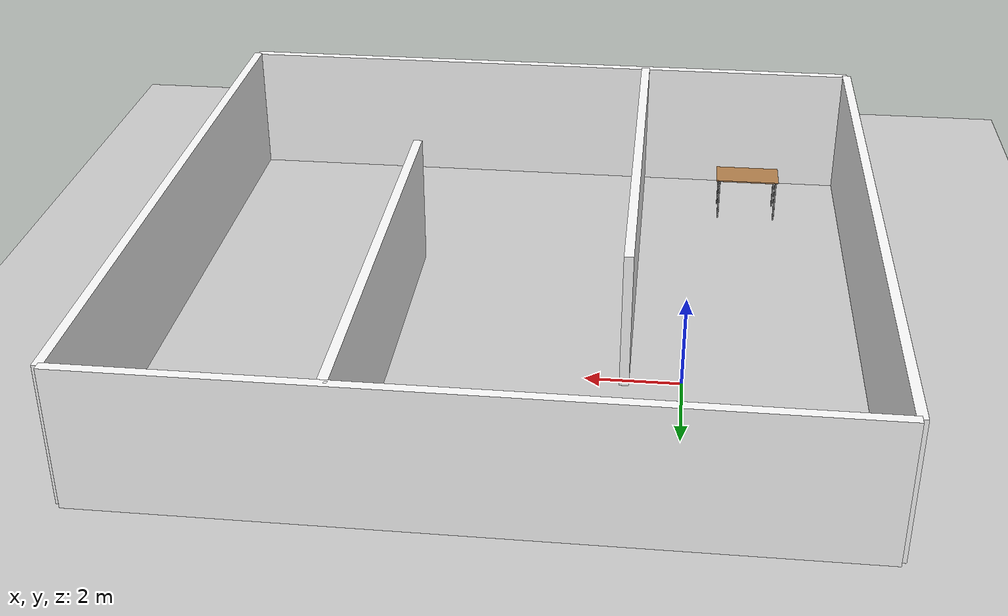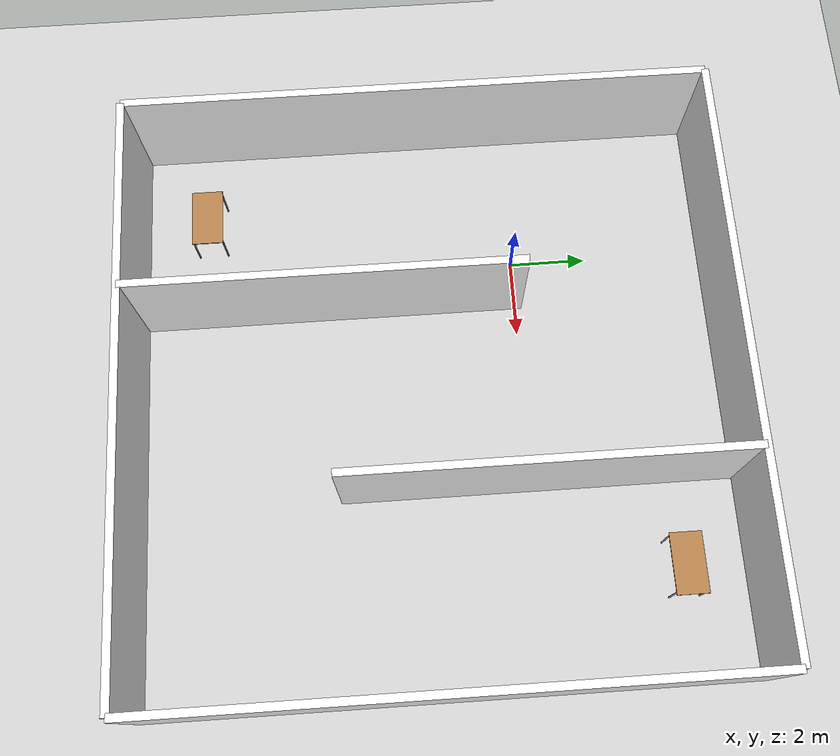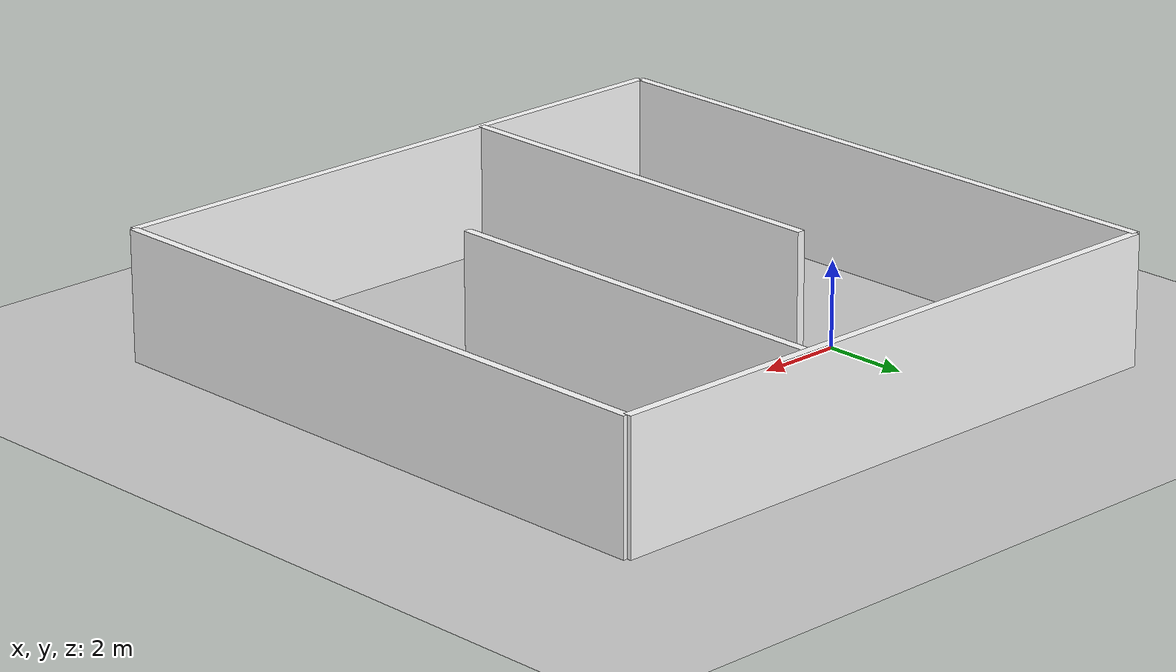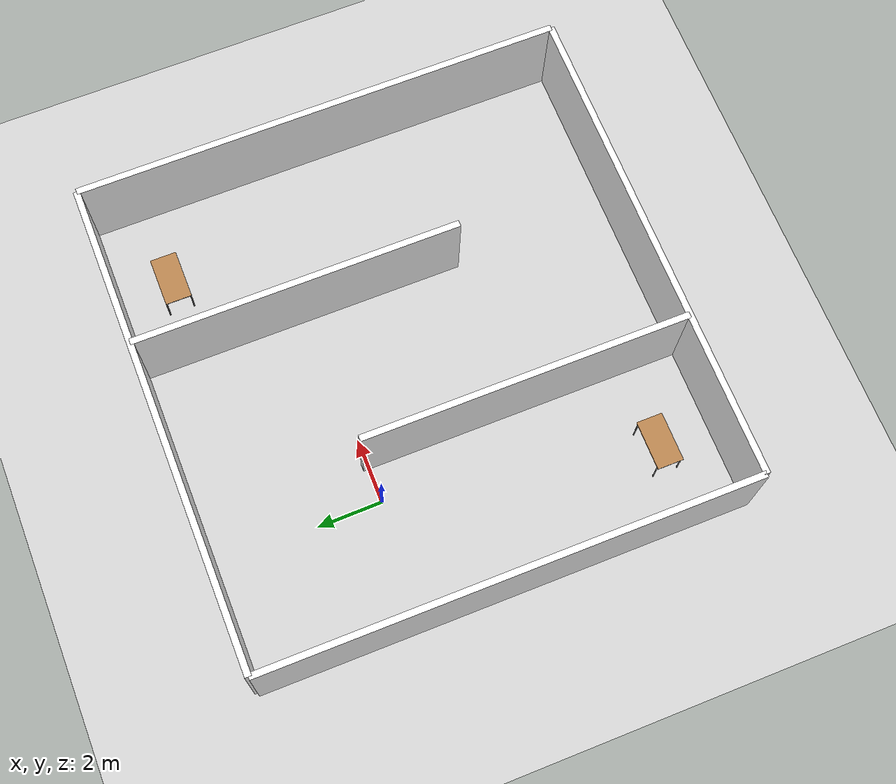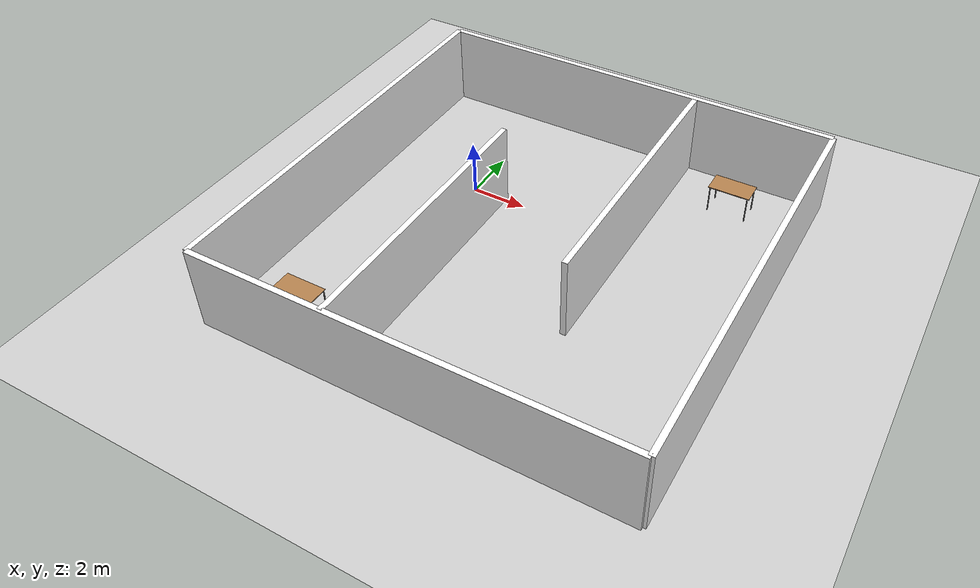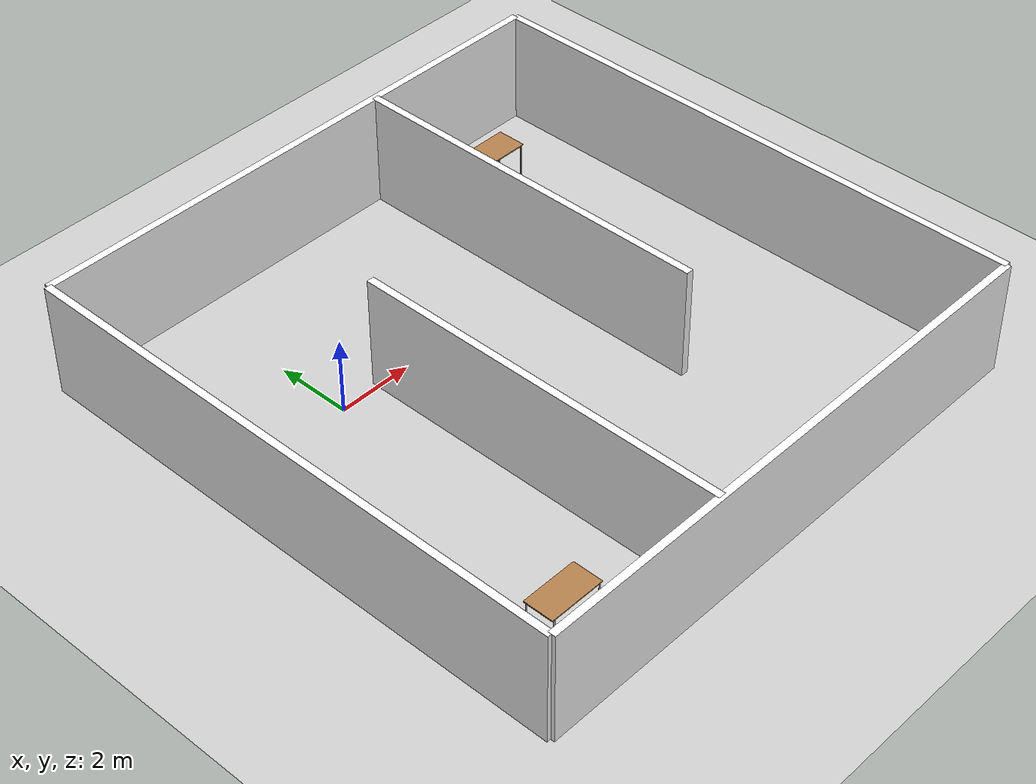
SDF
<sdf version="1.7">
 <world name="default">
  <light name="sun" type="directional">
   <pose>0 0 10 0 -0 0</pose>
   <diffuse>0.8 0.8 0.8 1</diffuse>
   <specular>0.2 0.2 0.2 1</specular>
   <attenuation>
    <range>1000</range>
    <constant>0.9</constant>
    <linear>0.01</linear>
    <quadratic>0.001</quadratic>
   </attenuation>
   <direction>-0.5 0.1 -0.9</direction>
   <spot><inner_angle>0</inner_angle><outer_angle>0</outer_angle><falloff>0</falloff></spot>
  </light>
  <model name="ground_plane">
   <static>1</static>
   <link name="link">
    <collision name="collision">
     <geometry><plane><normal>0 0 1</normal><size>100 100</size></plane></geometry>
     <surface><friction><ode><mu>100</mu><mu2>50</mu2></ode></friction></surface>
    </collision>
    <visual name="visual">
     <cast_shadows>0</cast_shadows>
     <geometry><plane><normal>0 0 1</normal><size>100 100</size></plane></geometry>
     <material>
      <script><uri>file://media/materials/scripts/gazebo.material</uri><name>Gazebo/Grey</name></script>
     </material>
    </visual>
   </link>
  </model>
  <gravity>0 0 -9.8</gravity>
  <magnetic_field>6e-06 2.3e-05 -4.2e-05</magnetic_field>
  <atmosphere type="adiabatic"/>
  <physics type="ode">
   <max_step_size>0.001</max_step_size>
   <real_time_factor>1</real_time_factor>
   <real_time_update_rate>1000</real_time_update_rate>
  </physics>
  <scene><ambient>0.4 0.4 0.4 1</ambient><background>0.7 0.7 0.7 1</background><shadows>1</shadows></scene>
  <audio><device>default</device></audio>
  <spherical_coordinates>
   <surface_model>EARTH_WGS84</surface_model>
   <latitude_deg>0</latitude_deg>
   <longitude_deg>0</longitude_deg>
   <elevation>0</elevation>
   <heading_deg>0</heading_deg>
  </spherical_coordinates>
  <model name="warehouse_walls">
   <link name="walls_link">
    <inertial>
     <mass>1</mass>
     <inertia><ixx>1</ixx><ixy>0</ixy><ixz>0</ixz><iyy>1</iyy><iyz>0</iyz><izz>1</izz></inertia>
    </inertial>
    <visual name="visual_north">
     <geometry><box><size>15 0.2 3</size></box></geometry>
     <pose>0 7.5 1.5 0 -0 0</pose>
     <material>
      <ambient>0.8 0.8 0.8 1</ambient>
      <shader type="pixel"><normal_map>__default__</normal_map></shader>
      <script><name>ModelPreview_1::walls_link::visual_north_MATERIAL_</name><uri>__default__</uri></script>
      <diffuse>1 1 1 1</diffuse>
      <specular>0 0 0 1</specular>
      <emissive>0 0 0 1</emissive>
     </material>
    </visual>
    <visual name="ModelPreview_1::walls_link::visual_4">
     <geometry><box><size>0.2 10 3</size></box></geometry>
     <pose>-2.5 -2.5 1.5 0 -0 0</pose>
     <material>
      <ambient>0.8 0.8 0.8 1</ambient>
      <shader type="pixel"><normal_map>__default__</normal_map></shader>
      <script><name>ModelPreview_1::walls_link::visual_west_MATERIAL_</name><uri>__default__</uri></script>
      <diffuse>1 1 1 1</diffuse>
      <specular>0 0 0 1</specular>
      <emissive>0 0 0 1</emissive>
     </material>
    </visual>
    <visual name="ModelPreview_1::walls_link::visual_5">
     <geometry><box><size>0.2 10 3</size></box></geometry>
     <pose>2.5 2.5 1.5 0 -0 0</pose>
     <material>
      <ambient>0.8 0.8 0.8 1</ambient>
      <shader type="pixel"><normal_map>__default__</normal_map></shader>
      <script><name>ModelPreview_1::walls_link::visual_west_MATERIAL_</name><uri>__default__</uri></script>
      <diffuse>1 1 1 1</diffuse>
      <specular>0 0 0 1</specular>
      <emissive>0 0 0 1</emissive>
     </material>
    </visual>
    <visual name="visual_south">
     <geometry><box><size>15 0.2 3</size></box></geometry>
     <pose>0 -7.5 1.5 0 -0 0</pose>
     <material>
      <ambient>0.8 0.8 0.8 1</ambient>
      <shader type="pixel"><normal_map>__default__</normal_map></shader>
      <script><name>ModelPreview_1::walls_link::visual_south_MATERIAL_</name><uri>__default__</uri></script>
      <diffuse>1 1 1 1</diffuse>
      <specular>0 0 0 1</specular>
      <emissive>0 0 0 1</emissive>
     </material>
    </visual>
    <visual name="visual_east">
     <geometry><box><size>0.2 15 3</size></box></geometry>
     <pose>7.5 0 1.5 0 -0 0</pose>
     <material>
      <ambient>0.8 0.8 0.8 1</ambient>
      <shader type="pixel"><normal_map>__default__</normal_map></shader>
      <script><name>ModelPreview_1::walls_link::visual_east_MATERIAL_</name><uri>__default__</uri></script>
      <diffuse>1 1 1 1</diffuse>
      <specular>0 0 0 1</specular>
      <emissive>0 0 0 1</emissive>
     </material>
    </visual>
    <visual name="visual_west">
     <geometry><box><size>0.2 15 3</size></box></geometry>
     <pose>-7.5 0 1.5 0 -0 0</pose>
     <material>
      <ambient>0.8 0.8 0.8 1</ambient>
      <shader type="pixel"><normal_map>__default__</normal_map></shader>
      <script><name>ModelPreview_1::walls_link::visual_west_MATERIAL_</name><uri>__default__</uri></script>
      <diffuse>1 1 1 1</diffuse>
      <specular>0 0 0 1</specular>
      <emissive>0 0 0 1</emissive>
     </material>
    </visual>
    <collision name="collision_4">
     <pose>-2.5 -2.5 1.5 0 -0 0</pose>
     <geometry><box><size>0.2 10 3</size></box></geometry>
     <surface>
      <friction>
       <ode><mu>1</mu><mu2>1</mu2><fdir1>0 0 0</fdir1><slip1>0</slip1><slip2>0</slip2></ode>
       <torsional>
        <coefficient>1</coefficient>
        <patch_radius>0</patch_radius>
        <surface_radius>0</surface_radius>
        <use_patch_radius>1</use_patch_radius>
        <ode><slip>0</slip></ode>
       </torsional>
      </friction>
      <bounce><restitution_coefficient>0</restitution_coefficient><threshold>1e+06</threshold></bounce>
      <contact>
       <collide_without_contact>0</collide_without_contact>
       <collide_without_contact_bitmask>1</collide_without_contact_bitmask>
       <collide_bitmask>1</collide_bitmask>
       <ode>
        <soft_cfm>0</soft_cfm>
        <soft_erp>0.2</soft_erp>
        <kp>1e+13</kp>
        <kd>1</kd>
        <max_vel>0.01</max_vel>
        <min_depth>0</min_depth>
       </ode>
       <bullet>
        <split_impulse>1</split_impulse>
        <split_impulse_penetration_threshold>-0.01</split_impulse_penetration_threshold>
        <soft_cfm>0</soft_cfm>
        <soft_erp>0.2</soft_erp>
        <kp>1e+13</kp>
        <kd>1</kd>
       </bullet>
      </contact>
     </surface>
    </collision>
    <collision name="collision_5">
     <pose>2.5 2.5 1.5 0 -0 0</pose>
     <geometry><box><size>0.2 10 3</size></box></geometry>
     <surface>
      <friction>
       <ode><mu>1</mu><mu2>1</mu2><fdir1>0 0 0</fdir1><slip1>0</slip1><slip2>0</slip2></ode>
       <torsional>
        <coefficient>1</coefficient>
        <patch_radius>0</patch_radius>
        <surface_radius>0</surface_radius>
        <use_patch_radius>1</use_patch_radius>
        <ode><slip>0</slip></ode>
       </torsional>
      </friction>
      <bounce><restitution_coefficient>0</restitution_coefficient><threshold>1e+06</threshold></bounce>
      <contact>
       <collide_without_contact>0</collide_without_contact>
       <collide_without_contact_bitmask>1</collide_without_contact_bitmask>
       <collide_bitmask>1</collide_bitmask>
       <ode>
        <soft_cfm>0</soft_cfm>
        <soft_erp>0.2</soft_erp>
        <kp>1e+13</kp>
        <kd>1</kd>
        <max_vel>0.01</max_vel>
        <min_depth>0</min_depth>
       </ode>
       <bullet>
        <split_impulse>1</split_impulse>
        <split_impulse_penetration_threshold>-0.01</split_impulse_penetration_threshold>
        <soft_cfm>0</soft_cfm>
        <soft_erp>0.2</soft_erp>
        <kp>1e+13</kp>
        <kd>1</kd>
       </bullet>
      </contact>
     </surface>
    </collision>
    <collision name="collision_north">
     <pose>0 7.5 1.5 0 -0 0</pose>
     <geometry><box><size>15 0.2 3</size></box></geometry>
     <surface>
      <friction>
       <ode><mu>1</mu><mu2>1</mu2><fdir1>0 0 0</fdir1><slip1>0</slip1><slip2>0</slip2></ode>
       <torsional>
        <coefficient>1</coefficient>
        <patch_radius>0</patch_radius>
        <surface_radius>0</surface_radius>
        <use_patch_radius>1</use_patch_radius>
        <ode><slip>0</slip></ode>
       </torsional>
      </friction>
      <bounce><restitution_coefficient>0</restitution_coefficient><threshold>1e+06</threshold></bounce>
      <contact>
       <collide_without_contact>0</collide_without_contact>
       <collide_without_contact_bitmask>1</collide_without_contact_bitmask>
       <collide_bitmask>1</collide_bitmask>
       <ode>
        <soft_cfm>0</soft_cfm>
        <soft_erp>0.2</soft_erp>
        <kp>1e+13</kp>
        <kd>1</kd>
        <max_vel>0.01</max_vel>
        <min_depth>0</min_depth>
       </ode>
       <bullet>
        <split_impulse>1</split_impulse>
        <split_impulse_penetration_threshold>-0.01</split_impulse_penetration_threshold>
        <soft_cfm>0</soft_cfm>
        <soft_erp>0.2</soft_erp>
        <kp>1e+13</kp>
        <kd>1</kd>
       </bullet>
      </contact>
     </surface>
    </collision>
    <collision name="collision_south">
     <pose>0 -7.5 1.5 0 -0 0</pose>
     <geometry><box><size>15 0.2 3</size></box></geometry>
     <surface>
      <friction>
       <ode><mu>1</mu><mu2>1</mu2><fdir1>0 0 0</fdir1><slip1>0</slip1><slip2>0</slip2></ode>
       <torsional>
        <coefficient>1</coefficient>
        <patch_radius>0</patch_radius>
        <surface_radius>0</surface_radius>
        <use_patch_radius>1</use_patch_radius>
        <ode><slip>0</slip></ode>
       </torsional>
      </friction>
      <bounce><restitution_coefficient>0</restitution_coefficient><threshold>1e+06</threshold></bounce>
      <contact>
       <collide_without_contact>0</collide_without_contact>
       <collide_without_contact_bitmask>1</collide_without_contact_bitmask>
       <collide_bitmask>1</collide_bitmask>
       <ode>
        <soft_cfm>0</soft_cfm>
        <soft_erp>0.2</soft_erp>
        <kp>1e+13</kp>
        <kd>1</kd>
        <max_vel>0.01</max_vel>
        <min_depth>0</min_depth>
       </ode>
       <bullet>
        <split_impulse>1</split_impulse>
        <split_impulse_penetration_threshold>-0.01</split_impulse_penetration_threshold>
        <soft_cfm>0</soft_cfm>
        <soft_erp>0.2</soft_erp>
        <kp>1e+13</kp>
        <kd>1</kd>
       </bullet>
      </contact>
     </surface>
    </collision>
    <collision name="collision_east">
     <pose>7.5 0 1.5 0 -0 0</pose>
     <geometry><box><size>0.2 15 3</size></box></geometry>
     <surface>
      <friction>
       <ode><mu>1</mu><mu2>1</mu2><fdir1>0 0 0</fdir1><slip1>0</slip1><slip2>0</slip2></ode>
       <torsional>
        <coefficient>1</coefficient>
        <patch_radius>0</patch_radius>
        <surface_radius>0</surface_radius>
        <use_patch_radius>1</use_patch_radius>
        <ode><slip>0</slip></ode>
       </torsional>
      </friction>
      <bounce><restitution_coefficient>0</restitution_coefficient><threshold>1e+06</threshold></bounce>
      <contact>
       <collide_without_contact>0</collide_without_contact>
       <collide_without_contact_bitmask>1</collide_without_contact_bitmask>
       <collide_bitmask>1</collide_bitmask>
       <ode>
        <soft_cfm>0</soft_cfm>
        <soft_erp>0.2</soft_erp>
        <kp>1e+13</kp>
        <kd>1</kd>
        <max_vel>0.01</max_vel>
        <min_depth>0</min_depth>
       </ode>
       <bullet>
        <split_impulse>1</split_impulse>
        <split_impulse_penetration_threshold>-0.01</split_impulse_penetration_threshold>
        <soft_cfm>0</soft_cfm>
        <soft_erp>0.2</soft_erp>
        <kp>1e+13</kp>
        <kd>1</kd>
       </bullet>
      </contact>
     </surface>
    </collision>
    <collision name="collision_west">
     <pose>-7.5 0 1.5 0 -0 0</pose>
     <geometry><box><size>0.2 15 3</size></box></geometry>
     <surface>
      <friction>
       <ode><mu>1</mu><mu2>1</mu2><fdir1>0 0 0</fdir1><slip1>0</slip1><slip2>0</slip2></ode>
       <torsional>
        <coefficient>1</coefficient>
        <patch_radius>0</patch_radius>
        <surface_radius>0</surface_radius>
        <use_patch_radius>1</use_patch_radius>
        <ode><slip>0</slip></ode>
       </torsional>
      </friction>
      <bounce><restitution_coefficient>0</restitution_coefficient><threshold>1e+06</threshold></bounce>
      <contact>
       <collide_without_contact>0</collide_without_contact>
       <collide_without_contact_bitmask>1</collide_without_contact_bitmask>
       <collide_bitmask>1</collide_bitmask>
       <ode>
        <soft_cfm>0</soft_cfm>
        <soft_erp>0.2</soft_erp>
        <kp>1e+13</kp>
        <kd>1</kd>
        <max_vel>0.01</max_vel>
        <min_depth>0</min_depth>
       </ode>
       <bullet>
        <split_impulse>1</split_impulse>
        <split_impulse_penetration_threshold>-0.01</split_impulse_penetration_threshold>
        <soft_cfm>0</soft_cfm>
        <soft_erp>0.2</soft_erp>
        <kp>1e+13</kp>
        <kd>1</kd>
       </bullet>
      </contact>
     </surface>
    </collision>
   </link>
   <static>1</static>
   <pose>3.67509 -2.32435 0 0 -0 0</pose>
  </model>
  <model name="table">
   <static>1</static>
   <link name="link">
    <collision name="surface">
     <pose>0 0 1 0 -0 0</pose>
     <geometry><box><size>1.5 0.8 0.03</size></box></geometry>
     <surface><friction><ode><mu>0.6</mu><mu2>0.6</mu2></ode></friction></surface>
    </collision>
    <visual name="visual1">
     <pose>0 0 1 0 -0 0</pose>
     <geometry><box><size>1.5 0.8 0.03</size></box></geometry>
     <material>
      <script><uri>file://media/materials/scripts/gazebo.material</uri><name>Gazebo/Wood</name></script>
     </material>
    </visual>
    <collision name="front_left_leg">
     <pose>0.68 0.38 0.5 0 -0 0</pose>
     <geometry><cylinder><radius>0.02</radius><length>1</length></cylinder></geometry>
    </collision>
    <visual name="front_left_leg">
     <pose>0.68 0.38 0.5 0 -0 0</pose>
     <geometry><cylinder><radius>0.02</radius><length>1</length></cylinder></geometry>
     <material>
      <script><uri>file://media/materials/scripts/gazebo.material</uri><name>Gazebo/Grey</name></script>
     </material>
    </visual>
    <collision name="front_right_leg">
     <pose>0.68 -0.38 0.5 0 -0 0</pose>
     <geometry><cylinder><radius>0.02</radius><length>1</length></cylinder></geometry>
    </collision>
    <visual name="front_right_leg">
     <pose>0.68 -0.38 0.5 0 -0 0</pose>
     <geometry><cylinder><radius>0.02</radius><length>1</length></cylinder></geometry>
     <material>
      <script><uri>file://media/materials/scripts/gazebo.material</uri><name>Gazebo/Grey</name></script>
     </material>
    </visual>
    <collision name="back_right_leg">
     <pose>-0.68 -0.38 0.5 0 -0 0</pose>
     <geometry><cylinder><radius>0.02</radius><length>1</length></cylinder></geometry>
    </collision>
    <visual name="back_right_leg">
     <pose>-0.68 -0.38 0.5 0 -0 0</pose>
     <geometry><cylinder><radius>0.02</radius><length>1</length></cylinder></geometry>
     <material>
      <script><uri>file://media/materials/scripts/gazebo.material</uri><name>Gazebo/Grey</name></script>
     </material>
    </visual>
    <collision name="back_left_leg">
     <pose>-0.68 0.38 0.5 0 -0 0</pose>
     <geometry><cylinder><radius>0.02</radius><length>1</length></cylinder></geometry>
    </collision>
    <visual name="back_left_leg">
     <pose>-0.68 0.38 0.5 0 -0 0</pose>
     <geometry><cylinder><radius>0.02</radius><length>1</length></cylinder></geometry>
     <material>
      <script><uri>file://media/materials/scripts/gazebo.material</uri><name>Gazebo/Grey</name></script>
     </material>
    </visual>
   </link>
   <pose>-1.47144 -7.99952 0 0 -0 0</pose>
  </model>
  <model name="table_0">
   <static>1</static>
   <link name="link">
    <collision name="surface">
     <pose>0 0 1 0 -0 0</pose>
     <geometry><box><size>1.5 0.8 0.03</size></box></geometry>
     <surface><friction><ode><mu>0.6</mu><mu2>0.6</mu2></ode></friction></surface>
    </collision>
    <visual name="visual1">
     <pose>0 0 1 0 -0 0</pose>
     <geometry><box><size>1.5 0.8 0.03</size></box></geometry>
     <material>
      <script><uri>file://media/materials/scripts/gazebo.material</uri><name>Gazebo/Wood</name></script>
     </material>
    </visual>
    <collision name="front_left_leg">
     <pose>0.68 0.38 0.5 0 -0 0</pose>
     <geometry><cylinder><radius>0.02</radius><length>1</length></cylinder></geometry>
    </collision>
    <visual name="front_left_leg">
     <pose>0.68 0.38 0.5 0 -0 0</pose>
     <geometry><cylinder><radius>0.02</radius><length>1</length></cylinder></geometry>
     <material>
      <script><uri>file://media/materials/scripts/gazebo.material</uri><name>Gazebo/Grey</name></script>
     </material>
    </visual>
    <collision name="front_right_leg">
     <pose>0.68 -0.38 0.5 0 -0 0</pose>
     <geometry><cylinder><radius>0.02</radius><length>1</length></cylinder></geometry>
    </collision>
    <visual name="front_right_leg">
     <pose>0.68 -0.38 0.5 0 -0 0</pose>
     <geometry><cylinder><radius>0.02</radius><length>1</length></cylinder></geometry>
     <material>
      <script><uri>file://media/materials/scripts/gazebo.material</uri><name>Gazebo/Grey</name></script>
     </material>
    </visual>
    <collision name="back_right_leg">
     <pose>-0.68 -0.38 0.5 0 -0 0</pose>
     <geometry><cylinder><radius>0.02</radius><length>1</length></cylinder></geometry>
    </collision>
    <visual name="back_right_leg">
     <pose>-0.68 -0.38 0.5 0 -0 0</pose>
     <geometry><cylinder><radius>0.02</radius><length>1</length></cylinder></geometry>
     <material>
      <script><uri>file://media/materials/scripts/gazebo.material</uri><name>Gazebo/Grey</name></script>
     </material>
    </visual>
    <collision name="back_left_leg">
     <pose>-0.68 0.38 0.5 0 -0 0</pose>
     <geometry><cylinder><radius>0.02</radius><length>1</length></cylinder></geometry>
    </collision>
    <visual name="back_left_leg">
     <pose>-0.68 0.38 0.5 0 -0 0</pose>
     <geometry><cylinder><radius>0.02</radius><length>1</length></cylinder></geometry>
     <material>
      <script><uri>file://media/materials/scripts/gazebo.material</uri><name>Gazebo/Grey</name></script>
     </material>
    </visual>
   </link>
   <pose>8.47361 3.47933 0 0 -0 0</pose>
  </model>
 </world>
</sdf>
